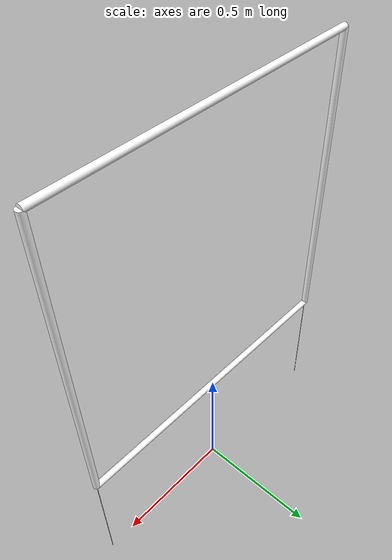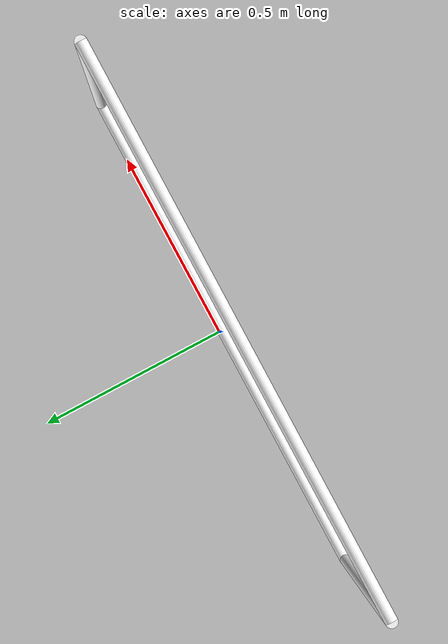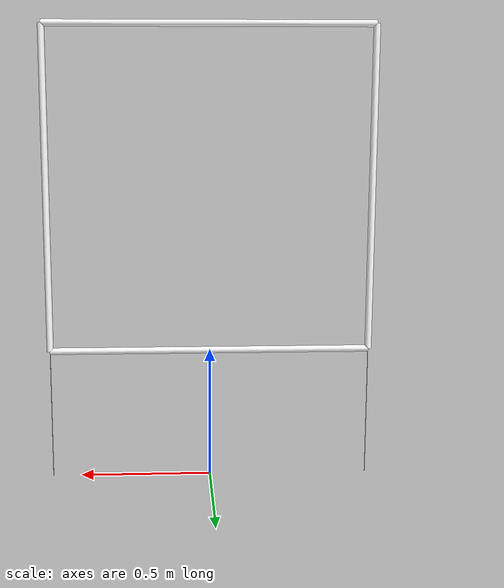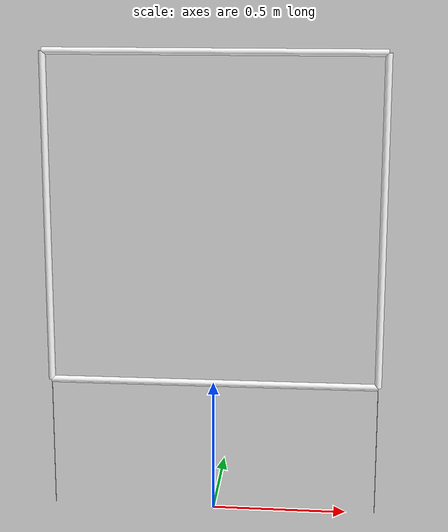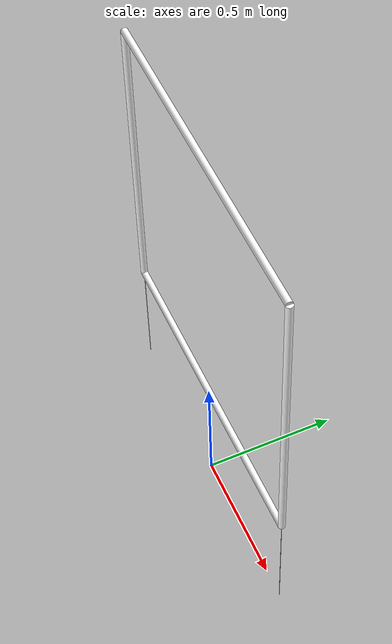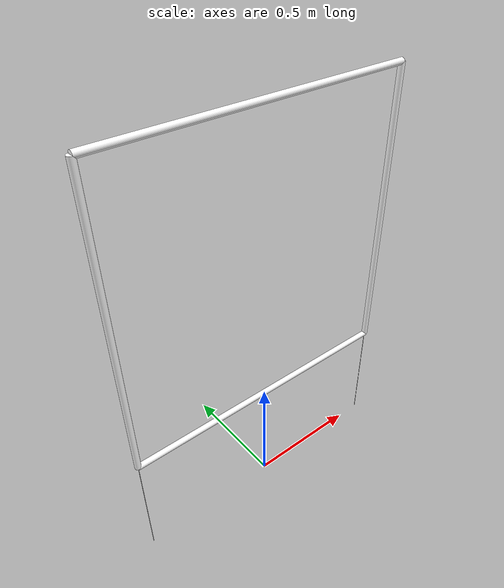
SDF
<?xml version="1.0"?>
<sdf version="1.11">  <model name="robosub23_buoy">
    <static>1</static>

    <link name="buoy_top">
      <pose>0 0 1.7192 0 1.5707 0</pose>
      <visual name="buoy_top_vis">
        <geometry>
          <cylinder>
            <radius>0.0127</radius>
            <length>1.2192</length>
          </cylinder>
        </geometry>
        <material>
          <ambient>1 1 1 1</ambient>
          <diffuse>1 1 1 1</diffuse>
          <specular>0.1 0.1 0.1 1</specular>
        </material>
      </visual>
      <collision name="buoy_top_collide">
        <geometry>
          <cylinder>
            <radius>0.0127</radius>
            <length>1.2192</length>
          </cylinder>
        </geometry>
      </collision>
    </link>

    <link name="buoy_bottom">
      <pose>0 0 0.5 0 1.5707 0</pose>
      <visual name="buoy_bottom_vis">
        <geometry>
          <cylinder>
            <radius>0.0127</radius>
            <length>1.2192</length>
          </cylinder>
        </geometry>
        <material>
          <ambient>1 1 1 1</ambient>
          <diffuse>1 1 1 1</diffuse>
          <specular>0.1 0.1 0.1 1</specular>
        </material>
      </visual>
      <collision name="buoy_bottom_collide">
        <geometry>
          <cylinder>
            <radius>0.0127</radius>
            <length>1.2192</length>
          </cylinder>
        </geometry>
      </collision>
    </link>

    <link name="buoy_side_left">
      <pose>-0.6096 0 1.1096 0 0 0</pose>
      <visual name="buoy_side_left_vis">
        <geometry>
          <cylinder>
            <radius>0.0127</radius>
            <length>1.2192</length>
          </cylinder>
        </geometry>
        <material>
          <ambient>1 1 1 1</ambient>
          <diffuse>1 1 1 1</diffuse>
          <specular>0.1 0.1 0.1 1</specular>
        </material>
      </visual>
      <collision name="buoy_side_left_collide">
        <geometry>
          <cylinder>
            <radius>0.0127</radius>
            <length>1.2192</length>
          </cylinder>
        </geometry>
      </collision>
    </link>

    <link name="buoy_side_right">
      <pose>0.6096 0 1.1096 0 0 0</pose>
      <visual name="buoy_side_right_vis">
        <geometry>
          <cylinder>
            <radius>0.0127</radius>
            <length>1.2192</length>
          </cylinder>
        </geometry>
        <material>
          <ambient>1 1 1 1</ambient>
          <diffuse>1 1 1 1</diffuse>
          <specular>0.1 0.1 0.1 1</specular>
        </material>
      </visual>
      <collision name="buoy_side_right_collide">
        <geometry>
          <cylinder>
            <radius>0.0127</radius>
            <length>1.2192</length>
          </cylinder>
        </geometry>
      </collision>
    </link>

    <link name="buoy_mooring_left">
      <pose>-0.6096 0 0.25 0 0 0</pose>
      <visual name="buoy_mooring_left_vis">
        <geometry>
          <cylinder>
            <radius>0.001</radius>
            <length>0.5</length>
          </cylinder>
        </geometry>
        <material>
          <ambient>0 0 0 1</ambient>
          <diffuse>0 0 0 1</diffuse>
          <specular>0.1 0.1 0.1 1</specular>
        </material>
      </visual>
    </link>

    <link name="buoy_mooring_right">
      <pose>0.6096 0 0.25 0 0 0</pose>
      <visual name="buoy_mooring_right_vis">
        <geometry>
          <cylinder>
            <radius>0.001</radius>
            <length>0.5</length>
          </cylinder>
        </geometry>
        <material>
          <ambient>0 0 0 1</ambient>
          <diffuse>0 0 0 1</diffuse>
          <specular>0.1 0.1 0.1 1</specular>
        </material>
      </visual>
    </link>
  </model>
</sdf>
